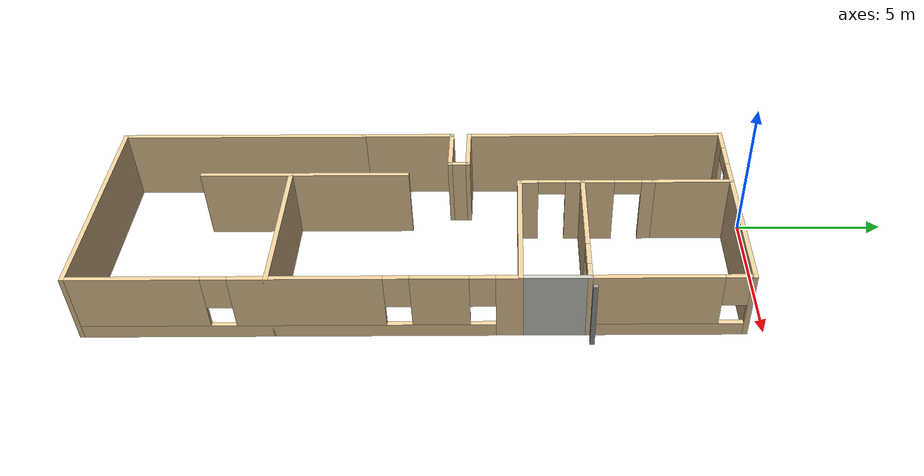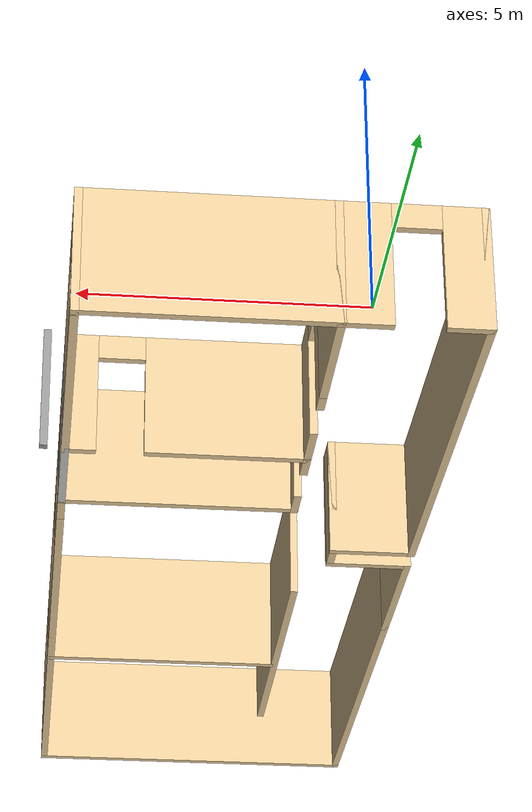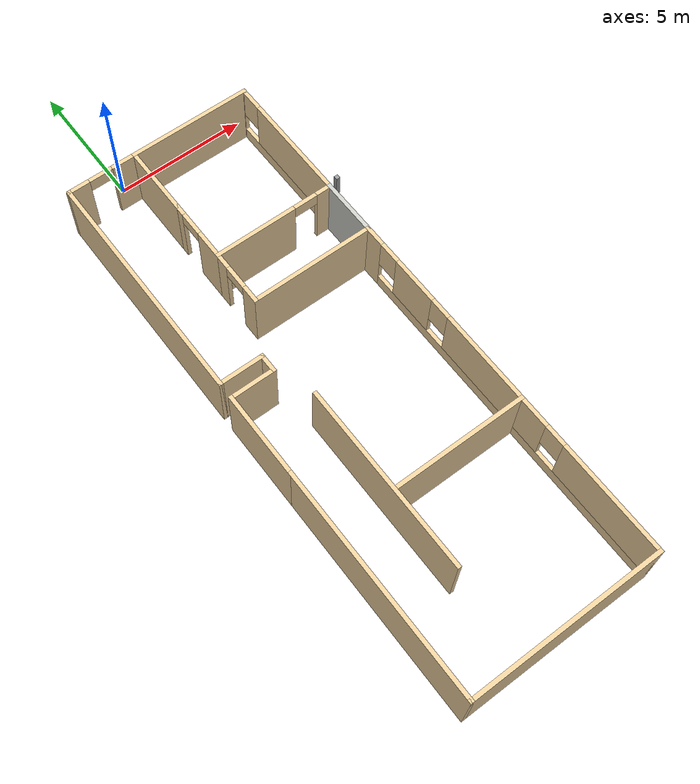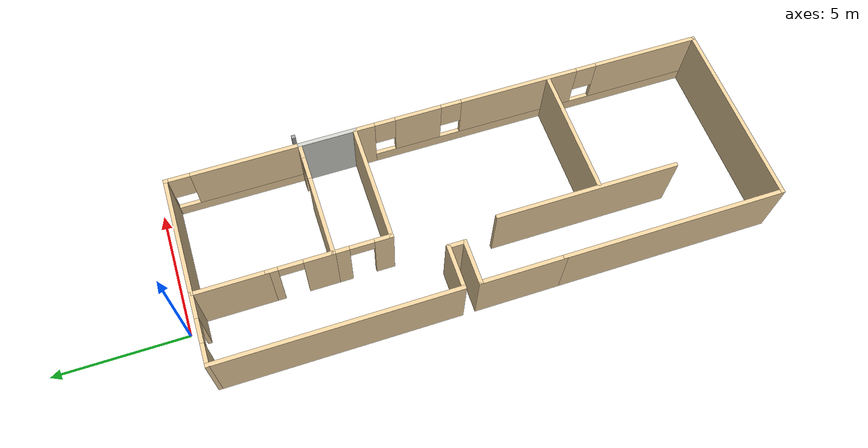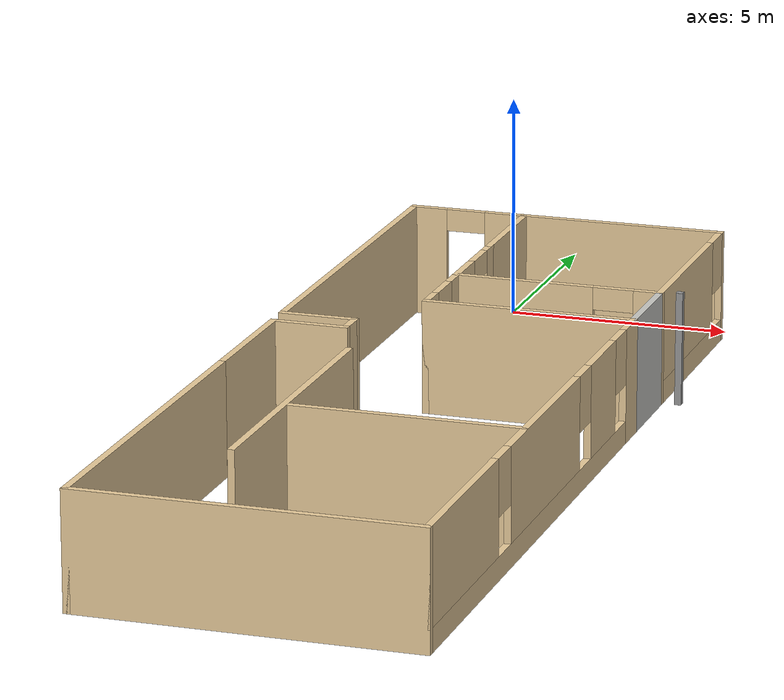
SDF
<?xml version='1.0'?>
<sdf version='1.6'>
  <model name='Apartment'>
    <pose frame=''>1.62387 -11.045 0 0 -0 0</pose>
    <link name='Wall_0'>
      <pose frame=''>-2.48387 10.445 0 0 -0 0</pose>
      <visual name='Wall_0_Visual_0'>
        <pose frame=''>-0.945758 0 1.25 0 -0 0</pose>
        <geometry>
          <box>
            <size>0.858484 0.15 2.5</size>
          </box>
        </geometry>
        <material>
          <script>
            <uri>file://media/materials/scripts/gazebo.material</uri>
            <name>Gazebo/Grey</name>
          </script>
          <ambient>0.921569 0.807843 0.615686 1</ambient>
        </material>
        <meta>
          <layer>0</layer>
        </meta>
      </visual>
      <collision name='Wall_0_Collision_0'>
        <geometry>
          <box>
            <size>0.858484 0.15 2.5</size>
          </box>
        </geometry>
        <pose frame=''>-0.945758 0 1.25 0 -0 0</pose>
      </collision>
      <visual name='Wall_0_Visual_1'>
        <pose frame=''>0.879242 0 1.25 0 -0 0</pose>
        <geometry>
          <box>
            <size>0.991516 0.15 2.5</size>
          </box>
        </geometry>
        <material>
          <script>
            <uri>file://media/materials/scripts/gazebo.material</uri>
            <name>Gazebo/Grey</name>
          </script>
          <ambient>0.921569 0.807843 0.615686 1</ambient>
        </material>
        <meta>
          <layer>0</layer>
        </meta>
      </visual>
      <collision name='Wall_0_Collision_1'>
        <geometry>
          <box>
            <size>0.991516 0.15 2.5</size>
          </box>
        </geometry>
        <pose frame=''>0.879242 0 1.25 0 -0 0</pose>
      </collision>
      <visual name='Wall_0_Visual_2'>
        <pose frame=''>-0.066516 0 2.25 0 -0 0</pose>
        <geometry>
          <box>
            <size>0.9 0.15 0.5</size>
          </box>
        </geometry>
        <material>
          <script>
            <uri>file://media/materials/scripts/gazebo.material</uri>
            <name>Gazebo/Grey</name>
          </script>
          <ambient>0.921569 0.807843 0.615686 1</ambient>
        </material>
        <meta>
          <layer>0</layer>
        </meta>
      </visual>
      <collision name='Wall_0_Collision_2'>
        <geometry>
          <box>
            <size>0.9 0.15 0.5</size>
          </box>
        </geometry>
        <pose frame=''>-0.066516 0 2.25 0 -0 0</pose>
      </collision>
    </link>
    <link name='Wall_1'>
      <collision name='Wall_1_Collision'>
        <geometry>
          <box>
            <size>2.78 0.15 2.5</size>
          </box>
        </geometry>
        <pose frame=''>0 0 1.25 0 -0 0</pose>
      </collision>
      <visual name='Wall_1_Visual'>
        <pose frame=''>0 0 1.25 0 -0 0</pose>
        <geometry>
          <box>
            <size>2.78 0.15 2.5</size>
          </box>
        </geometry>
        <material>
          <script>
            <uri>file://media/materials/scripts/gazebo.material</uri>
            <name>Gazebo/Grey</name>
          </script>
          <ambient>0.921569 0.807843 0.615686 1</ambient>
        </material>
        <meta>
          <layer>0</layer>
        </meta>
      </visual>
      <pose frame=''>-1.18388 9.13 0 0 0 -1.5708</pose>
    </link>
    <link name='Wall_15'>
      <collision name='Wall_15_Collision'>
        <geometry>
          <box>
            <size>0.15 0.15 2.5</size>
          </box>
        </geometry>
        <pose frame=''>0 0 1.25 0 -0 0</pose>
      </collision>
      <visual name='Wall_15_Visual'>
        <pose frame=''>0 0 1.25 0 -0 0</pose>
        <geometry>
          <box>
            <size>0.15 0.15 2.5</size>
          </box>
        </geometry>
        <material>
          <script>
            <uri>file://media/materials/scripts/gazebo.material</uri>
            <name>Gazebo/Grey</name>
          </script>
          <ambient>1 1 1 1</ambient>
        </material>
        <meta>
          <layer>0</layer>
        </meta>
      </visual>
      <pose frame=''>3.78388 5.59145 0 0 -0 0</pose>
    </link>
    <link name='Wall_22'>
      <collision name='Wall_22_Collision'>
        <geometry>
          <box>
            <size>4.71 0.15 2.5</size>
          </box>
        </geometry>
        <pose frame=''>0 0 1.25 0 -0 0</pose>
      </collision>
      <visual name='Wall_22_Visual'>
        <pose frame=''>0 0 1.25 0 -0 0</pose>
        <geometry>
          <box>
            <size>4.71 0.15 2.5</size>
          </box>
        </geometry>
        <material>
          <script>
            <uri>file://media/materials/scripts/gazebo.material</uri>
            <name>Gazebo/Grey</name>
          </script>
          <ambient>0.921569 0.807843 0.615686 1</ambient>
        </material>
        <meta>
          <layer>0</layer>
        </meta>
      </visual>
      <pose frame=''>1.09613 10.445 0 0 -0 0</pose>
    </link>
    <link name='Wall_29'>
      <collision name='Wall_29_Collision'>
        <geometry>
          <box>
            <size>8.99 0.15 2.5</size>
          </box>
        </geometry>
        <pose frame=''>0 0 1.25 0 -0 0</pose>
      </collision>
      <visual name='Wall_29_Visual'>
        <pose frame=''>0 0 1.25 0 -0 0</pose>
        <geometry>
          <box>
            <size>8.99 0.15 2.5</size>
          </box>
        </geometry>
        <material>
          <script>
            <uri>file://media/materials/scripts/gazebo.material</uri>
            <name>Gazebo/Grey</name>
          </script>
          <ambient>0.921569 0.807843 0.615686 1</ambient>
        </material>
        <meta>
          <layer>0</layer>
        </meta>
      </visual>
      <pose frame=''>-3.78388 6.025 0 0 0 -1.5708</pose>
    </link>
    <link name='Wall_3'>
      <pose frame=''>-1.18388 6.64 0 0 0 -1.5708</pose>
      <visual name='Wall_3_Visual_0'>
        <pose frame=''>-1.0225 0 1.25 0 -0 0</pose>
        <geometry>
          <box>
            <size>0.455 0.15 2.5</size>
          </box>
        </geometry>
        <material>
          <script>
            <uri>file://media/materials/scripts/gazebo.material</uri>
            <name>Gazebo/Grey</name>
          </script>
          <ambient>0.921569 0.807843 0.615686 1</ambient>
        </material>
        <meta>
          <layer>0</layer>
        </meta>
      </visual>
      <collision name='Wall_3_Collision_0'>
        <geometry>
          <box>
            <size>0.455 0.15 2.5</size>
          </box>
        </geometry>
        <pose frame=''>-1.0225 0 1.25 0 -0 0</pose>
      </collision>
      <visual name='Wall_3_Visual_1'>
        <pose frame=''>0.6775 0 1.25 0 -0 0</pose>
        <geometry>
          <box>
            <size>1.145 0.15 2.5</size>
          </box>
        </geometry>
        <material>
          <script>
            <uri>file://media/materials/scripts/gazebo.material</uri>
            <name>Gazebo/Grey</name>
          </script>
          <ambient>0.921569 0.807843 0.615686 1</ambient>
        </material>
        <meta>
          <layer>0</layer>
        </meta>
      </visual>
      <collision name='Wall_3_Collision_1'>
        <geometry>
          <box>
            <size>1.145 0.15 2.5</size>
          </box>
        </geometry>
        <pose frame=''>0.6775 0 1.25 0 -0 0</pose>
      </collision>
      <visual name='Wall_3_Visual_2'>
        <pose frame=''>-0.345 0 2.25 0 -0 0</pose>
        <geometry>
          <box>
            <size>0.9 0.15 0.5</size>
          </box>
        </geometry>
        <material>
          <script>
            <uri>file://media/materials/scripts/gazebo.material</uri>
            <name>Gazebo/Grey</name>
          </script>
          <ambient>0.921569 0.807843 0.615686 1</ambient>
        </material>
        <meta>
          <layer>0</layer>
        </meta>
      </visual>
      <collision name='Wall_3_Collision_2'>
        <geometry>
          <box>
            <size>0.9 0.15 0.5</size>
          </box>
        </geometry>
        <pose frame=''>-0.345 0 2.25 0 -0 0</pose>
      </collision>
    </link>
    <link name='Wall_30'>
      <collision name='Wall_30_Collision'>
        <geometry>
          <box>
            <size>1.75 0.15 2.5</size>
          </box>
        </geometry>
        <pose frame=''>0 0 1.25 0 -0 0</pose>
      </collision>
      <visual name='Wall_30_Visual'>
        <pose frame=''>0 0 1.25 0 -0 0</pose>
        <geometry>
          <box>
            <size>1.75 0.15 2.5</size>
          </box>
        </geometry>
        <material>
          <script>
            <uri>file://media/materials/scripts/gazebo.material</uri>
            <name>Gazebo/Grey</name>
          </script>
          <ambient>0.921569 0.807843 0.615686 1</ambient>
        </material>
        <meta>
          <layer>0</layer>
        </meta>
      </visual>
      <pose frame=''>-2.98387 1.605 0 0 -0 0</pose>
    </link>
    <link name='Wall_31'>
      <collision name='Wall_31_Collision'>
        <geometry>
          <box>
            <size>0.75 0.15 2.5</size>
          </box>
        </geometry>
        <pose frame=''>0 0 1.25 0 -0 0</pose>
      </collision>
      <visual name='Wall_31_Visual'>
        <pose frame=''>0 0 1.25 0 -0 0</pose>
        <geometry>
          <box>
            <size>0.75 0.15 2.5</size>
          </box>
        </geometry>
        <material>
          <script>
            <uri>file://media/materials/scripts/gazebo.material</uri>
            <name>Gazebo/Grey</name>
          </script>
          <ambient>0.921569 0.807843 0.615686 1</ambient>
        </material>
        <meta>
          <layer>0</layer>
        </meta>
      </visual>
      <pose frame=''>-2.18388 1.305 0 0 0 -1.5708</pose>
    </link>
    <link name='Wall_32'>
      <collision name='Wall_32_Collision'>
        <geometry>
          <box>
            <size>1.75 0.15 2.5</size>
          </box>
        </geometry>
        <pose frame=''>0 0 1.25 0 -0 0</pose>
      </collision>
      <visual name='Wall_32_Visual'>
        <pose frame=''>0 0 1.25 0 -0 0</pose>
        <geometry>
          <box>
            <size>1.75 0.15 2.5</size>
          </box>
        </geometry>
        <material>
          <script>
            <uri>file://media/materials/scripts/gazebo.material</uri>
            <name>Gazebo/Grey</name>
          </script>
          <ambient>0.921569 0.807843 0.615686 1</ambient>
        </material>
        <meta>
          <layer>0</layer>
        </meta>
      </visual>
      <pose frame=''>-2.98387 1.005 0 0 -0 3.14159</pose>
    </link>
    <link name='Wall_33'>
      <collision name='Wall_33_Collision'>
        <geometry>
          <box>
            <size>3.25 0.15 2.5</size>
          </box>
        </geometry>
        <pose frame=''>0 0 1.25 0 -0 0</pose>
      </collision>
      <visual name='Wall_33_Visual'>
        <pose frame=''>0 0 1.25 0 -0 0</pose>
        <geometry>
          <box>
            <size>3.25 0.15 2.5</size>
          </box>
        </geometry>
        <material>
          <script>
            <uri>file://media/materials/scripts/gazebo.material</uri>
            <name>Gazebo/Grey</name>
          </script>
          <ambient>0.921569 0.807843 0.615686 1</ambient>
        </material>
        <meta>
          <layer>0</layer>
        </meta>
      </visual>
      <pose frame=''>-3.78388 -0.545 0 0 0 -1.5708</pose>
    </link>
    <link name='Wall_35'>
      <pose frame=''>-1.18388 4.415 0 0 0 -1.5708</pose>
      <visual name='Wall_35_Visual_0'>
        <pose frame=''>-0.799118 0 1.25 0 -0 0</pose>
        <geometry>
          <box>
            <size>0.651765 0.15 2.5</size>
          </box>
        </geometry>
        <material>
          <script>
            <uri>file://media/materials/scripts/gazebo.material</uri>
            <name>Gazebo/Grey</name>
          </script>
          <ambient>0.921569 0.807843 0.615686 1</ambient>
        </material>
        <meta>
          <layer>0</layer>
        </meta>
      </visual>
      <collision name='Wall_35_Collision_0'>
        <geometry>
          <box>
            <size>0.651765 0.15 2.5</size>
          </box>
        </geometry>
        <pose frame=''>-0.799118 0 1.25 0 -0 0</pose>
      </collision>
      <visual name='Wall_35_Visual_1'>
        <pose frame=''>0.775882 0 1.25 0 -0 0</pose>
        <geometry>
          <box>
            <size>0.698235 0.15 2.5</size>
          </box>
        </geometry>
        <material>
          <script>
            <uri>file://media/materials/scripts/gazebo.material</uri>
            <name>Gazebo/Grey</name>
          </script>
          <ambient>0.921569 0.807843 0.615686 1</ambient>
        </material>
        <meta>
          <layer>0</layer>
        </meta>
      </visual>
      <collision name='Wall_35_Collision_1'>
        <geometry>
          <box>
            <size>0.698235 0.15 2.5</size>
          </box>
        </geometry>
        <pose frame=''>0.775882 0 1.25 0 -0 0</pose>
      </collision>
      <visual name='Wall_35_Visual_2'>
        <pose frame=''>-0.023235 0 2.25 0 -0 0</pose>
        <geometry>
          <box>
            <size>0.9 0.15 0.5</size>
          </box>
        </geometry>
        <material>
          <script>
            <uri>file://media/materials/scripts/gazebo.material</uri>
            <name>Gazebo/Grey</name>
          </script>
          <ambient>0.921569 0.807843 0.615686 1</ambient>
        </material>
        <meta>
          <layer>0</layer>
        </meta>
      </visual>
      <collision name='Wall_35_Collision_2'>
        <geometry>
          <box>
            <size>0.9 0.15 0.5</size>
          </box>
        </geometry>
        <pose frame=''>-0.023235 0 2.25 0 -0 0</pose>
      </collision>
    </link>
    <link name='Wall_36'>
      <collision name='Wall_36_Collision'>
        <geometry>
          <box>
            <size>4.71 0.15 2.5</size>
          </box>
        </geometry>
        <pose frame=''>0 0 1.25 0 -0 0</pose>
      </collision>
      <visual name='Wall_36_Visual'>
        <pose frame=''>0 0 1.25 0 -0 0</pose>
        <geometry>
          <box>
            <size>4.71 0.15 2.5</size>
          </box>
        </geometry>
        <material>
          <script>
            <uri>file://media/materials/scripts/gazebo.material</uri>
            <name>Gazebo/Grey</name>
          </script>
          <ambient>0.921569 0.807843 0.615686 1</ambient>
        </material>
        <meta>
          <layer>0</layer>
        </meta>
      </visual>
      <pose frame=''>1.09613 3.365 0 0 -0 0</pose>
    </link>
    <link name='Wall_38'>
      <collision name='Wall_38_Collision'>
        <geometry>
          <box>
            <size>2.25 0.15 2.5</size>
          </box>
        </geometry>
        <pose frame=''>0 0 1.25 0 -0 0</pose>
      </collision>
      <visual name='Wall_38_Visual'>
        <pose frame=''>0 0 1.25 0 -0 0</pose>
        <geometry>
          <box>
            <size>2.25 0.15 2.5</size>
          </box>
        </geometry>
        <material>
          <script>
            <uri>file://media/materials/scripts/gazebo.material</uri>
            <name>Gazebo/CeilingTiled</name>
          </script>
          <ambient>1 1 1 1</ambient>
        </material>
        <meta>
          <layer>0</layer>
        </meta>
      </visual>
      <pose frame=''>3.37613 4.415 0 0 -0 1.5708</pose>
    </link>
    <link name='Wall_40'>
      <pose frame=''>3.37613 7.955 0 0 0 -1.5708</pose>
      <visual name='Wall_40_Visual_0'>
        <pose frame=''>-2.47766 0 1.25 0 -0 0</pose>
        <geometry>
          <box>
            <size>0.174688 0.15 2.5</size>
          </box>
        </geometry>
        <material>
          <script>
            <uri>file://media/materials/scripts/gazebo.material</uri>
            <name>Gazebo/Grey</name>
          </script>
          <ambient>0.921569 0.807843 0.615686 1</ambient>
        </material>
        <meta>
          <layer>0</layer>
        </meta>
      </visual>
      <collision name='Wall_40_Collision_0'>
        <geometry>
          <box>
            <size>0.174688 0.15 2.5</size>
          </box>
        </geometry>
        <pose frame=''>-2.47766 0 1.25 0 -0 0</pose>
      </collision>
      <visual name='Wall_40_Visual_1'>
        <pose frame=''>0.087344 0 0.25 0 -0 0</pose>
        <geometry>
          <box>
            <size>4.95531 0.15 0.5</size>
          </box>
        </geometry>
        <material>
          <script>
            <uri>file://media/materials/scripts/gazebo.material</uri>
            <name>Gazebo/Grey</name>
          </script>
          <ambient>0.921569 0.807843 0.615686 1</ambient>
        </material>
        <meta>
          <layer>0</layer>
        </meta>
      </visual>
      <collision name='Wall_40_Collision_1'>
        <geometry>
          <box>
            <size>4.95531 0.15 0.5</size>
          </box>
        </geometry>
        <pose frame=''>0.087344 0 0.25 0 -0 0</pose>
      </collision>
      <visual name='Wall_40_Visual_2'>
        <pose frame=''>0.487344 0 1.5 0 -0 0</pose>
        <geometry>
          <box>
            <size>4.15531 0.15 2</size>
          </box>
        </geometry>
        <material>
          <script>
            <uri>file://media/materials/scripts/gazebo.material</uri>
            <name>Gazebo/Grey</name>
          </script>
          <ambient>0.921569 0.807843 0.615686 1</ambient>
        </material>
        <meta>
          <layer>0</layer>
        </meta>
      </visual>
      <collision name='Wall_40_Collision_2'>
        <geometry>
          <box>
            <size>4.15531 0.15 2</size>
          </box>
        </geometry>
        <pose frame=''>0.487344 0 1.5 0 -0 0</pose>
      </collision>
      <visual name='Wall_40_Visual_3'>
        <pose frame=''>-1.99031 0 1.9 0 -0 0</pose>
        <geometry>
          <box>
            <size>0.8 0.15 1.2</size>
          </box>
        </geometry>
        <material>
          <script>
            <uri>file://media/materials/scripts/gazebo.material</uri>
            <name>Gazebo/Grey</name>
          </script>
          <ambient>0.921569 0.807843 0.615686 1</ambient>
        </material>
        <meta>
          <layer>0</layer>
        </meta>
      </visual>
      <collision name='Wall_40_Collision_3'>
        <geometry>
          <box>
            <size>0.8 0.15 1.2</size>
          </box>
        </geometry>
        <pose frame=''>-1.99031 0 1.9 0 -0 0</pose>
      </collision>
    </link>
    <link name='Wall_42'>
      <collision name='Wall_42_Collision'>
        <geometry>
          <box>
            <size>7 0.15 2.5</size>
          </box>
        </geometry>
        <pose frame=''>0 0 1.25 0 -0 0</pose>
      </collision>
      <visual name='Wall_42_Visual'>
        <pose frame=''>0 0 1.25 0 -0 0</pose>
        <geometry>
          <box>
            <size>7 0.15 2.5</size>
          </box>
        </geometry>
        <material>
          <script>
            <uri>file://media/materials/scripts/gazebo.material</uri>
            <name>Gazebo/Grey</name>
          </script>
          <ambient>0.921569 0.807843 0.615686 1</ambient>
        </material>
        <meta>
          <layer>0</layer>
        </meta>
      </visual>
      <pose frame=''>-1.61544 -3.86048 0 0 0 -1.5708</pose>
    </link>
    <link name='Wall_44'>
      <collision name='Wall_44_Collision'>
        <geometry>
          <box>
            <size>8.5 0.15 2.5</size>
          </box>
        </geometry>
        <pose frame=''>0 0 1.25 0 -0 0</pose>
      </collision>
      <visual name='Wall_44_Visual'>
        <pose frame=''>0 0 1.25 0 -0 0</pose>
        <geometry>
          <box>
            <size>8.5 0.15 2.5</size>
          </box>
        </geometry>
        <material>
          <script>
            <uri>file://media/materials/scripts/gazebo.material</uri>
            <name>Gazebo/Grey</name>
          </script>
          <ambient>0.921569 0.807843 0.615686 1</ambient>
        </material>
        <meta>
          <layer>0</layer>
        </meta>
      </visual>
      <pose frame=''>-3.78388 -6.27 0 0 0 -1.5708</pose>
    </link>
    <link name='Wall_45'>
      <collision name='Wall_45_Collision'>
        <geometry>
          <box>
            <size>7.31 0.15 2.5</size>
          </box>
        </geometry>
        <pose frame=''>0 0 1.25 0 -0 0</pose>
      </collision>
      <visual name='Wall_45_Visual'>
        <pose frame=''>0 0 1.25 0 -0 0</pose>
        <geometry>
          <box>
            <size>7.31 0.15 2.5</size>
          </box>
        </geometry>
        <material>
          <script>
            <uri>file://media/materials/scripts/gazebo.material</uri>
            <name>Gazebo/Grey</name>
          </script>
          <ambient>0.921569 0.807843 0.615686 1</ambient>
        </material>
        <meta>
          <layer>0</layer>
        </meta>
      </visual>
      <pose frame=''>-0.203875 -10.445 0 0 -0 0</pose>
    </link>
    <link name='Wall_47'>
      <pose frame=''>3.37613 -3.54 0 0 0 -1.5708</pose>
      <visual name='Wall_47_Visual_0'>
        <pose frame=''>-6.55842 0 1.25 0 -0 0</pose>
        <geometry>
          <box>
            <size>0.843165 0.15 2.5</size>
          </box>
        </geometry>
        <material>
          <script>
            <uri>file://media/materials/scripts/gazebo.material</uri>
            <name>Gazebo/Grey</name>
          </script>
          <ambient>0.921569 0.807843 0.615686 1</ambient>
        </material>
        <meta>
          <layer>0</layer>
        </meta>
      </visual>
      <collision name='Wall_47_Collision_0'>
        <geometry>
          <box>
            <size>0.843165 0.15 2.5</size>
          </box>
        </geometry>
        <pose frame=''>-6.55842 0 1.25 0 -0 0</pose>
      </collision>
      <visual name='Wall_47_Visual_1'>
        <pose frame=''>0.421583 0 0.25 0 -0 0</pose>
        <geometry>
          <box>
            <size>13.1168 0.15 0.5</size>
          </box>
        </geometry>
        <material>
          <script>
            <uri>file://media/materials/scripts/gazebo.material</uri>
            <name>Gazebo/Grey</name>
          </script>
          <ambient>0.921569 0.807843 0.615686 1</ambient>
        </material>
        <meta>
          <layer>0</layer>
        </meta>
      </visual>
      <collision name='Wall_47_Collision_1'>
        <geometry>
          <box>
            <size>13.1168 0.15 0.5</size>
          </box>
        </geometry>
        <pose frame=''>0.421583 0 0.25 0 -0 0</pose>
      </collision>
      <visual name='Wall_47_Visual_2'>
        <pose frame=''>-4.43187 0 1.5 0 -0 0</pose>
        <geometry>
          <box>
            <size>1.80994 0.15 2</size>
          </box>
        </geometry>
        <material>
          <script>
            <uri>file://media/materials/scripts/gazebo.material</uri>
            <name>Gazebo/Grey</name>
          </script>
          <ambient>0.921569 0.807843 0.615686 1</ambient>
        </material>
        <meta>
          <layer>0</layer>
        </meta>
      </visual>
      <collision name='Wall_47_Collision_2'>
        <geometry>
          <box>
            <size>1.80994 0.15 2</size>
          </box>
        </geometry>
        <pose frame=''>-4.43187 0 1.5 0 -0 0</pose>
      </collision>
      <visual name='Wall_47_Visual_3'>
        <pose frame=''>-0.38228 0 1.5 0 -0 0</pose>
        <geometry>
          <box>
            <size>4.68924 0.15 2</size>
          </box>
        </geometry>
        <material>
          <script>
            <uri>file://media/materials/scripts/gazebo.material</uri>
            <name>Gazebo/Grey</name>
          </script>
          <ambient>0.921569 0.807843 0.615686 1</ambient>
        </material>
        <meta>
          <layer>0</layer>
        </meta>
      </visual>
      <collision name='Wall_47_Collision_3'>
        <geometry>
          <box>
            <size>4.68924 0.15 2</size>
          </box>
        </geometry>
        <pose frame=''>-0.38228 0 1.5 0 -0 0</pose>
      </collision>
      <visual name='Wall_47_Visual_4'>
        <pose frame=''>4.87117 0 1.5 0 -0 0</pose>
        <geometry>
          <box>
            <size>4.21766 0.15 2</size>
          </box>
        </geometry>
        <material>
          <script>
            <uri>file://media/materials/scripts/gazebo.material</uri>
            <name>Gazebo/Grey</name>
          </script>
          <ambient>0.921569 0.807843 0.615686 1</ambient>
        </material>
        <meta>
          <layer>0</layer>
        </meta>
      </visual>
      <collision name='Wall_47_Collision_4'>
        <geometry>
          <box>
            <size>4.21766 0.15 2</size>
          </box>
        </geometry>
        <pose frame=''>4.87117 0 1.5 0 -0 0</pose>
      </collision>
      <visual name='Wall_47_Visual_5'>
        <pose frame=''>-5.73684 0 1.9 0 -0 0</pose>
        <geometry>
          <box>
            <size>0.8 0.15 1.2</size>
          </box>
        </geometry>
        <material>
          <script>
            <uri>file://media/materials/scripts/gazebo.material</uri>
            <name>Gazebo/Grey</name>
          </script>
          <ambient>0.921569 0.807843 0.615686 1</ambient>
        </material>
        <meta>
          <layer>0</layer>
        </meta>
      </visual>
      <collision name='Wall_47_Collision_5'>
        <geometry>
          <box>
            <size>0.8 0.15 1.2</size>
          </box>
        </geometry>
        <pose frame=''>-5.73684 0 1.9 0 -0 0</pose>
      </collision>
      <visual name='Wall_47_Visual_6'>
        <pose frame=''>-3.1269 0 1.9 0 -0 0</pose>
        <geometry>
          <box>
            <size>0.8 0.15 1.2</size>
          </box>
        </geometry>
        <material>
          <script>
            <uri>file://media/materials/scripts/gazebo.material</uri>
            <name>Gazebo/Grey</name>
          </script>
          <ambient>0.921569 0.807843 0.615686 1</ambient>
        </material>
        <meta>
          <layer>0</layer>
        </meta>
      </visual>
      <collision name='Wall_47_Collision_6'>
        <geometry>
          <box>
            <size>0.8 0.15 1.2</size>
          </box>
        </geometry>
        <pose frame=''>-3.1269 0 1.9 0 -0 0</pose>
      </collision>
      <visual name='Wall_47_Visual_7'>
        <pose frame=''>2.36234 0 1.9 0 -0 0</pose>
        <geometry>
          <box>
            <size>0.8 0.15 1.2</size>
          </box>
        </geometry>
        <material>
          <script>
            <uri>file://media/materials/scripts/gazebo.material</uri>
            <name>Gazebo/Grey</name>
          </script>
          <ambient>0.921569 0.807843 0.615686 1</ambient>
        </material>
        <meta>
          <layer>0</layer>
        </meta>
      </visual>
      <collision name='Wall_47_Collision_7'>
        <geometry>
          <box>
            <size>0.8 0.15 1.2</size>
          </box>
        </geometry>
        <pose frame=''>2.36234 0 1.9 0 -0 0</pose>
      </collision>
    </link>
    <link name='Wall_49'>
      <collision name='Wall_49_Collision'>
        <geometry>
          <box>
            <size>5.033 0.15 2.5</size>
          </box>
        </geometry>
        <pose frame=''>0 0 1.25 0 -0 0</pose>
      </collision>
      <visual name='Wall_49_Visual'>
        <pose frame=''>0 0 1.25 0 -0 0</pose>
        <geometry>
          <box>
            <size>5.033 0.15 2.5</size>
          </box>
        </geometry>
        <material>
          <script>
            <uri>file://media/materials/scripts/gazebo.material</uri>
            <name>Gazebo/Grey</name>
          </script>
          <ambient>0.921569 0.807843 0.615686 1</ambient>
        </material>
        <meta>
          <layer>0</layer>
        </meta>
      </visual>
      <pose frame=''>0.934625 -4.325 0 0 -0 0</pose>
    </link>
    <link name='Wall_5'>
      <pose frame=''>1.09613 5.465 0 0 -0 0</pose>
      <visual name='Wall_5_Visual_0'>
        <pose frame=''>-0.775925 0 1.25 0 -0 0</pose>
        <geometry>
          <box>
            <size>3.15815 0.15 2.5</size>
          </box>
        </geometry>
        <material>
          <script>
            <uri>file://media/materials/scripts/gazebo.material</uri>
            <name>Gazebo/Grey</name>
          </script>
          <ambient>0.921569 0.807843 0.615686 1</ambient>
        </material>
        <meta>
          <layer>0</layer>
        </meta>
      </visual>
      <collision name='Wall_5_Collision_0'>
        <geometry>
          <box>
            <size>3.15815 0.15 2.5</size>
          </box>
        </geometry>
        <pose frame=''>-0.775925 0 1.25 0 -0 0</pose>
      </collision>
      <visual name='Wall_5_Visual_1'>
        <pose frame=''>2.02908 0 1.25 0 -0 0</pose>
        <geometry>
          <box>
            <size>0.65185 0.15 2.5</size>
          </box>
        </geometry>
        <material>
          <script>
            <uri>file://media/materials/scripts/gazebo.material</uri>
            <name>Gazebo/Grey</name>
          </script>
          <ambient>0.921569 0.807843 0.615686 1</ambient>
        </material>
        <meta>
          <layer>0</layer>
        </meta>
      </visual>
      <collision name='Wall_5_Collision_1'>
        <geometry>
          <box>
            <size>0.65185 0.15 2.5</size>
          </box>
        </geometry>
        <pose frame=''>2.02908 0 1.25 0 -0 0</pose>
      </collision>
      <visual name='Wall_5_Visual_2'>
        <pose frame=''>1.25315 0 2.25 0 -0 0</pose>
        <geometry>
          <box>
            <size>0.9 0.15 0.5</size>
          </box>
        </geometry>
        <material>
          <script>
            <uri>file://media/materials/scripts/gazebo.material</uri>
            <name>Gazebo/Grey</name>
          </script>
          <ambient>0.921569 0.807843 0.615686 1</ambient>
        </material>
        <meta>
          <layer>0</layer>
        </meta>
      </visual>
      <collision name='Wall_5_Collision_2'>
        <geometry>
          <box>
            <size>0.9 0.15 0.5</size>
          </box>
        </geometry>
        <pose frame=''>1.25315 0 2.25 0 -0 0</pose>
      </collision>
    </link>
    <static>1</static>
  </model>
</sdf>
